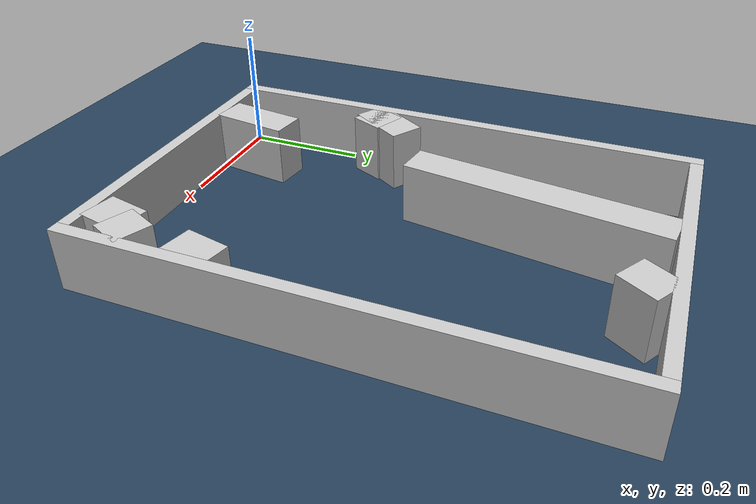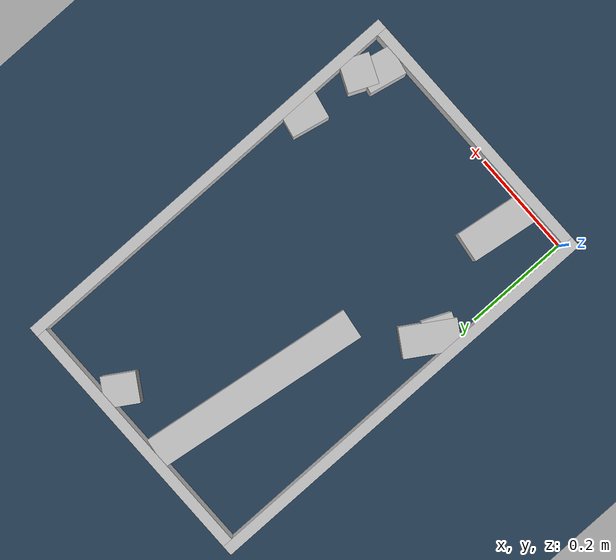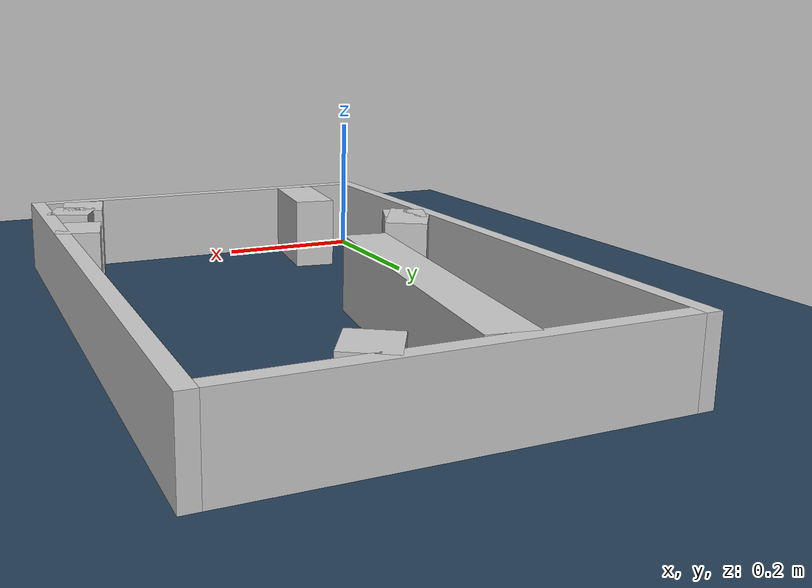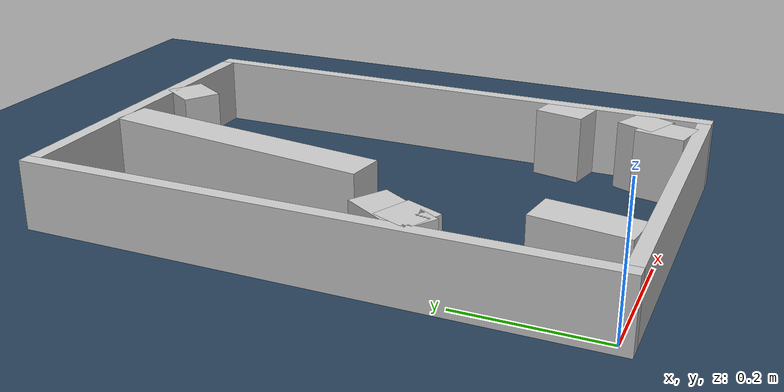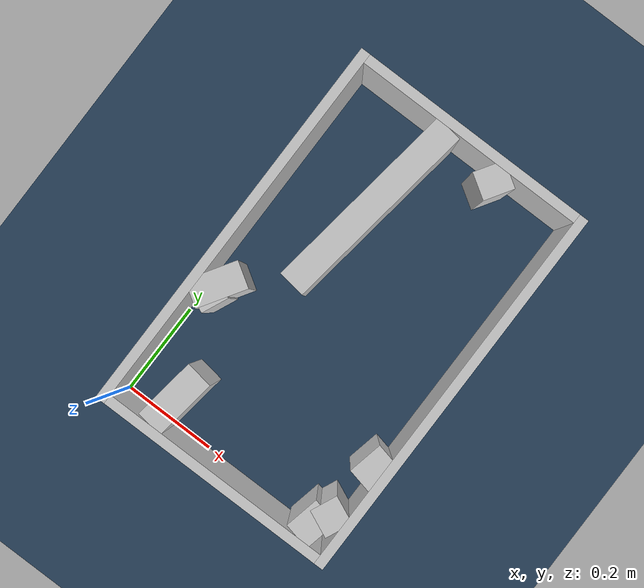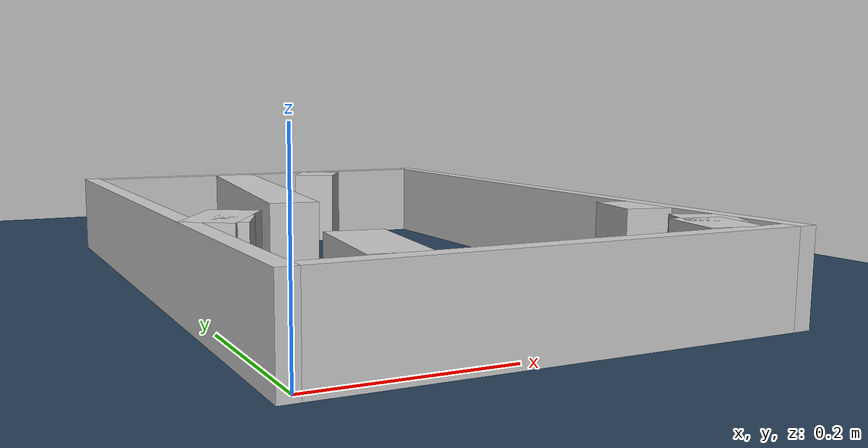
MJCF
<?xml version="1.0" ?>
<mujoco model="generated_real_template">
  <compiler angle="degree"/>
  <option timestep="0.002" integrator="implicitfast" iterations="100" cone="elliptic"/>
  <default>
    <geom density="1"/>
  </default>
  <asset>
    <texture builtin="gradient" height="3072" rgb1="0.3 0.5 0.7" rgb2="0 0 0" type="skybox" width="512"/>
    <texture builtin="checker" height="300" mark="edge" markrgb="0.8 0.8 0.8" name="groundplane" rgb1="0.2 0.3 0.4" rgb2="0.1 0.2 0.3" type="2d" width="300"/>
    <material name="groundplane" reflectance="0.2" texrepeat="5 5" texture="groundplane" texuniform="true"/>
  </asset>
  <worldbody>
    <light dir="0 0 -1" directional="true" pos="0 0 1.5"/>
    <geom name="floor" type="plane" condim="4" friction="0.5 0.005 0.001" material="groundplane" size="0 0 0.05"/>
    <body name="walls">
      <geom name="wall_boundary_left" type="box" condim="4" friction="1.0 0.005 0.0001" rgba="0.8 0.8 0.8 1" pos="-0.010000 0.387500 0.050000" euler="0 0 0.000000" size="0.010000 0.407500 0.050000"/>
      <geom name="wall_boundary_right" type="box" condim="4" friction="1.0 0.005 0.0001" rgba="0.8 0.8 0.8 1" pos="0.500000 0.387500 0.050000" euler="0 0 0.000000" size="0.010000 0.407500 0.050000"/>
      <geom name="wall_boundary_bottom" type="box" condim="4" friction="1.0 0.005 0.0001" rgba="0.8 0.8 0.8 1" pos="0.245000 -0.010000 0.050000" euler="0 0 0.000000" size="0.245000 0.010000 0.050000"/>
      <geom name="wall_boundary_top" type="box" condim="4" friction="1.0 0.005 0.0001" rgba="0.8 0.8 0.8 1" pos="0.245000 0.785000 0.050000" euler="0 0 0.000000" size="0.245000 0.010000 0.050000"/>
      <geom name="wall_inner_1_1" type="box" condim="4" friction="1.0 0.005 0.0001" rgba="0.8 0.8 0.8 1" pos="0.324434 0.748088 0.050000" euler="0 0 -122.112644" size="0.031773 0.028500 0.050000"/>
      <geom name="wall_inner_1_2" type="box" condim="4" friction="1.0 0.005 0.0001" rgba="0.8 0.8 0.8 1" pos="0.032251 0.282538 0.050000" euler="0 0 -122.112644" size="0.052881 0.028500 0.050000"/>
      <geom name="wall_inner_2_1" type="box" condim="4" friction="1.0 0.005 0.0001" rgba="0.8 0.8 0.8 1" pos="0.463186 0.068076 0.050000" euler="0 0 156.128711" size="0.029322 0.028500 0.050000"/>
      <geom name="wall_inner_2_2" type="box" condim="4" friction="1.0 0.005 0.0001" rgba="0.8 0.8 0.8 1" pos="0.026868 0.261164 0.050000" euler="0 0 156.128711" size="0.029381 0.028500 0.050000"/>
      <geom name="wall_inner_3_1" type="box" condim="4" friction="1.0 0.005 0.0001" rgba="0.8 0.8 0.8 1" pos="0.170623 0.570943 0.050000" euler="0 0 -98.005847" size="0.206066 0.028500 0.050000"/>
      <geom name="wall_inner_3_2" type="box" condim="4" friction="1.0 0.005 0.0001" rgba="0.8 0.8 0.8 1" pos="0.099447 0.064880 0.050000" euler="0 0 -98.005847" size="0.065519 0.028500 0.050000"/>
      <geom name="wall_inner_4_1" type="box" condim="4" friction="1.0 0.005 0.0001" rgba="0.8 0.8 0.8 1" pos="0.442267 0.035296 0.050000" euler="0 0 78.007347" size="0.036083 0.028500 0.050000"/>
      <geom name="wall_inner_4_2" type="box" condim="4" friction="1.0 0.005 0.0001" rgba="0.8 0.8 0.8 1" pos="0.474598 0.187498 0.050000" euler="0 0 78.007347" size="0.036204 0.028500 0.050000"/>
    </body>
  </worldbody>
</mujoco>
